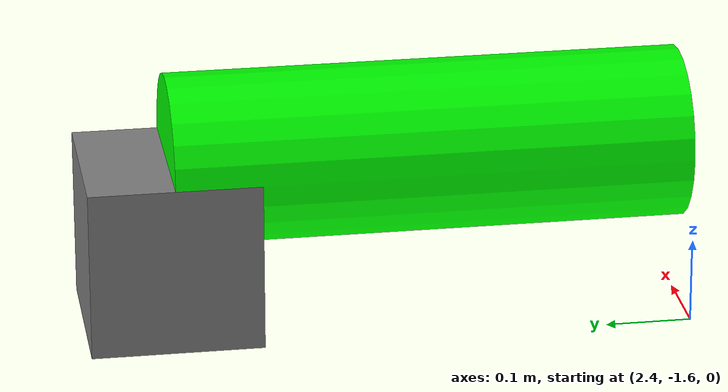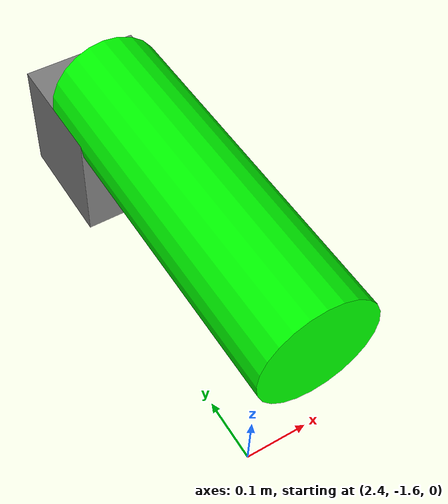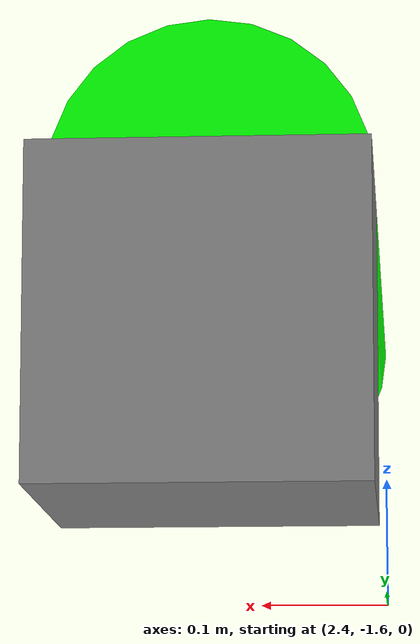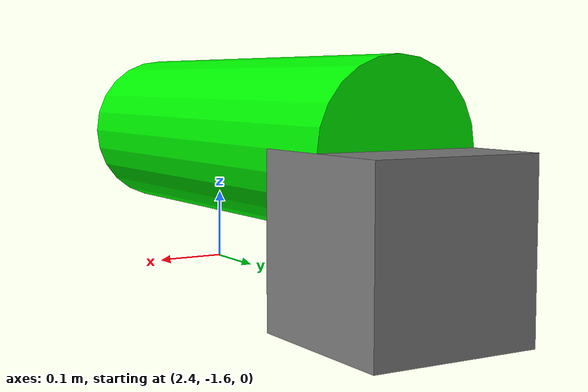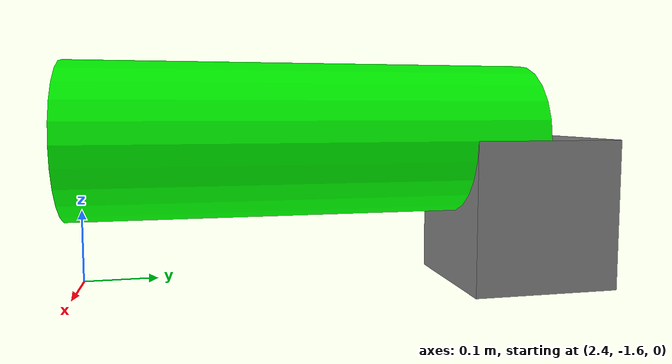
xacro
<robot name="simple_robot" xmlns:xacro="http://www.ros.org/wiki/xacro">

  <link name="world"/>

  <link name="base_link"> <!-- Each link should have a name to distinguish and refer to them -->
    <visual>
      <origin xyz="0 0 0.1" rpy="0 0 0"/>
      <geometry>
        <box size="0.2 0.2 0.2"/> <!-- This specifies the shape of the link -->
      </geometry>
      <material name="base_material">
        <color rgba="0.5 0.5 0.5 1"/> <!-- This specifies the color of the link -->
      </material>
    </visual>
  </link>

  <link name="link_1">
    <visual>
      <origin xyz="0 0 0.3" rpy="0 0 0"/>
      <geometry>
        <cylinder length="0.6" radius="0.1"/>
      </geometry>
      <material name="link1_material">
        <color rgba="0 1 0 1"/>
      </material>
    </visual>
  </link>

  <joint name="fixed" type="fixed">
    <origin xyz="2.5 -1 0" rpy="0 0 0"/> <!-- Rotate and offset the link (not its geometry) -->
    <parent link="world"/>
    <child link="base_link"/>
  </joint>

  <joint name="base_to_link_1" type="continuous">
    <origin xyz="0 0 0.2" rpy="${pi/2} 0 0"/> <!-- Rotate and offset the link (not its geometry) -->
    <axis xyz="0 1 0"/> <!-- This is the axis of rotation, by default rotation is on the x axis-->
    <parent link="base_link"/>
    <child link="link_1"/>
  </joint>
</robot>
